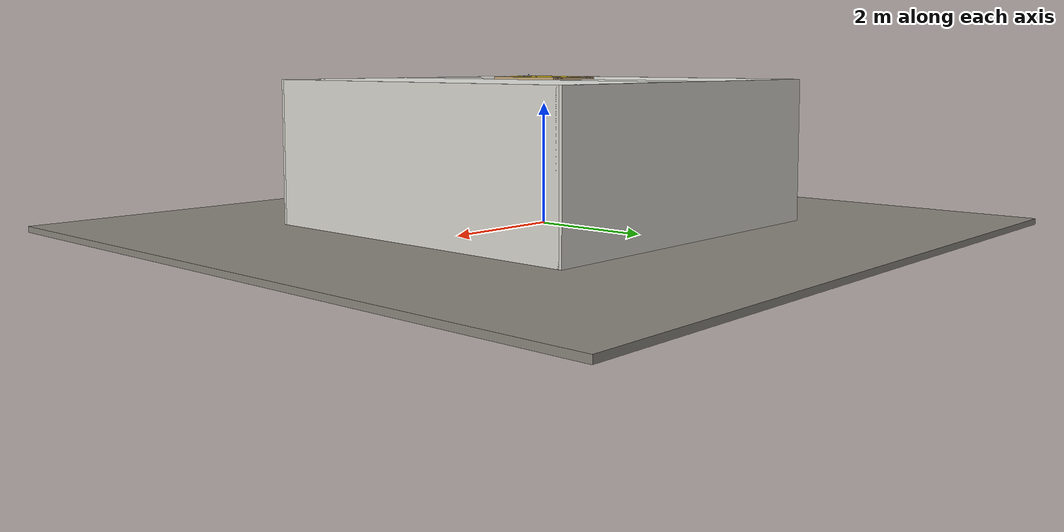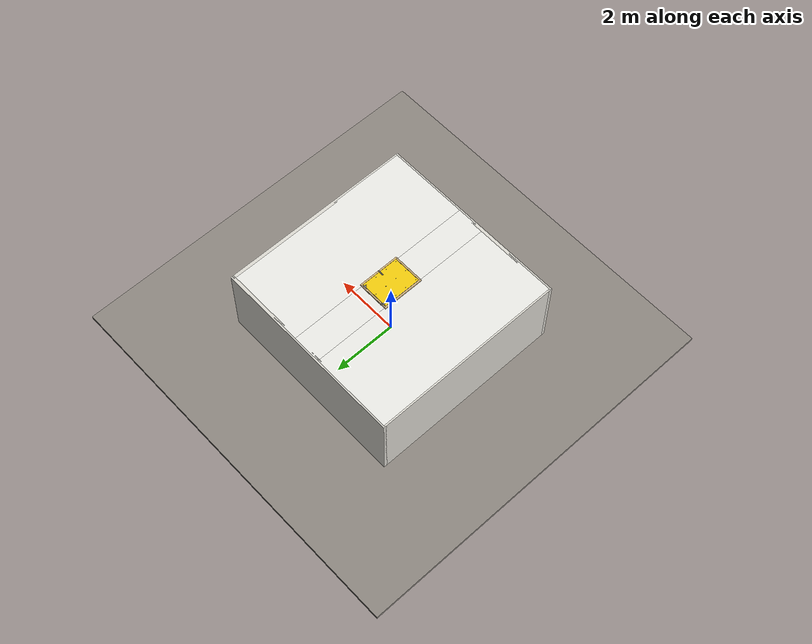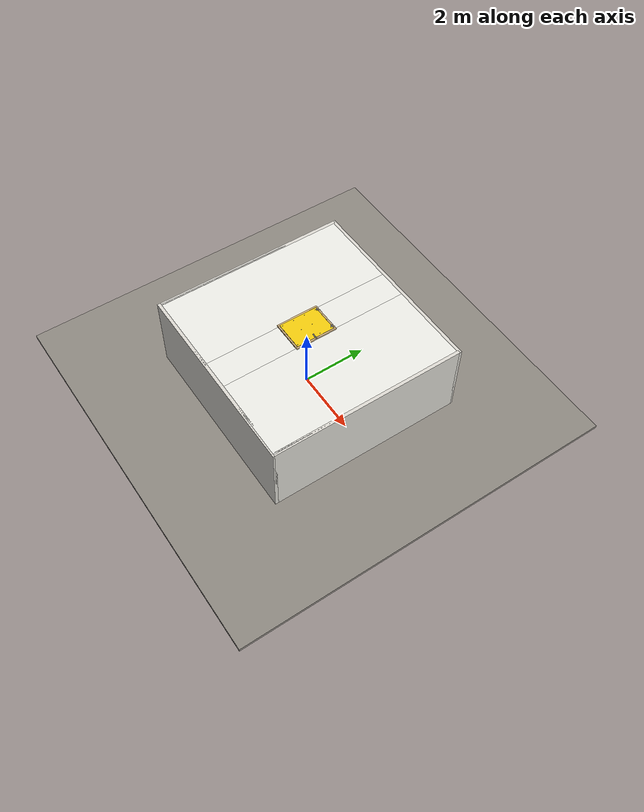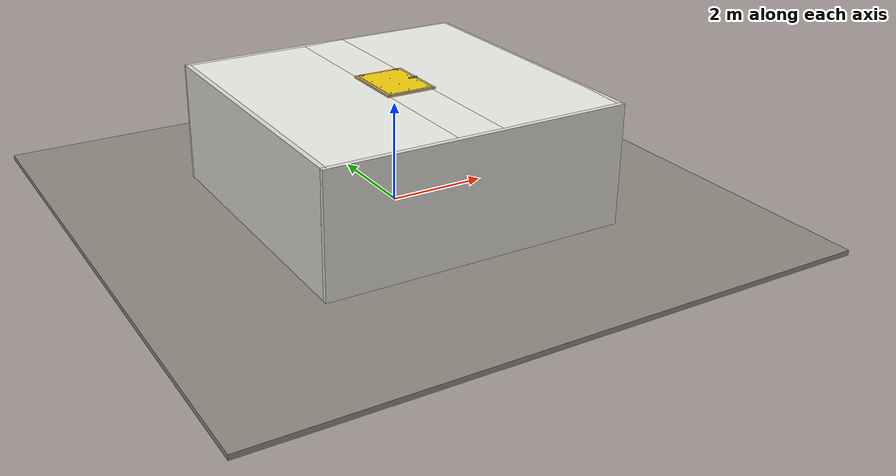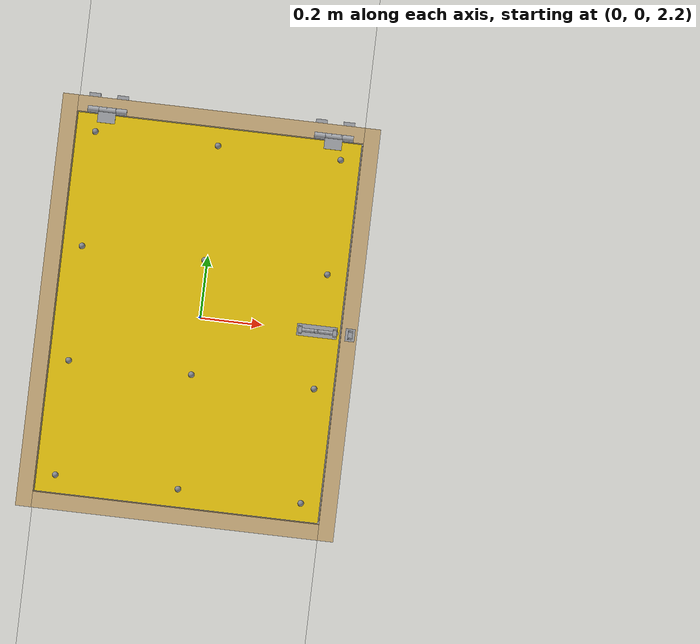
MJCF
<?xml version="1.0" ?>
<mujoco model="db0598_hatch_ceiling_full">
  <compiler angle="radian" meshdir="../../hardware" texturedir="../../textures" autolimits="true" inertiafromgeom="false"/>
  <option timestep="0.002" integrator="implicitfast" cone="elliptic" impratio="10" noslip_iterations="3">
    <flag multiccd="enable"/>
  </option>
  <size memory="16M"/>
  <default>
    <geom condim="4" solref="0.005 1" solimp="0.95 0.99 0.001"/>
    <joint solreflimit="0.005 1" solimplimit="0.95 0.99 0.001"/>
    <tendon solreflimit="0.005 1"/>
    <equality solref="0.002 1"/>
  </default>
  <visual>
    <headlight ambient="0.4 0.4 0.4" diffuse="0.7 0.7 0.7" specular="0.2 0.2 0.2"/>
    <quality shadowsize="4096"/>
    <map znear="0.01" zfar="60"/>
  </visual>
  <asset>
    <material name="mat_floor" rgba="0.55 0.53 0.5 1" specular="0.2" shininess="0.15" reflectance="0"/>
    <material name="mat_wall" rgba="0.78 0.76 0.7 1" specular="0.2" shininess="0.1" reflectance="0"/>
    <material name="mat_ceiling" rgba="0.92 0.92 0.9 1" specular="0.2" shininess="0.1" reflectance="0"/>
    <material name="mat_room_wall" rgba="0.86 0.85 0.82 1" specular="0.2" shininess="0.1" reflectance="0"/>
    <material name="mat_frame" rgba="0.82 0.7 0.5 1" specular="0.2" shininess="0.45" reflectance="0"/>
    <material name="mat_leaf" rgba="0.95 0.8 0.05 1" specular="0.23" shininess="0.34" reflectance="0.02"/>
    <material name="mat_hinge" rgba="0.65 0.66 0.68 1" specular="0.74" shininess="0.5" reflectance="0.36"/>
    <material name="mat_rivet" rgba="0.55 0.56 0.58 1" specular="0.8" shininess="0.55" reflectance="0.4"/>
    <material name="mat_op_steel" rgba="0.55 0.56 0.58 1" specular="0.8" shininess="0.55" reflectance="0.4"/>
    <material name="mat_bolt" rgba="0.65 0.66 0.68 1" specular="0.74" shininess="0.5" reflectance="0.36"/>
    <texture name="skybox" type="skybox" builtin="gradient" rgb1="0.6 0.7 0.85" rgb2="0.9 0.92 0.95" width="256" height="256"/>
  </asset>
  <worldbody>
    <light name="sun" pos="1.5 -2.5 4" dir="-0.3 0.5 -0.8" directional="true" diffuse="0.8 0.8 0.8" specular="0.3 0.3 0.3" castshadow="true"/>
    <light name="fill" pos="-1.5 2.5 3" dir="0.3 -0.5 -0.7" directional="true" diffuse="0.35 0.35 0.4" castshadow="false"/>
    <camera name="robot_view" pos="0 -1.875 3.53" xyaxes="1 0 0 0 0.26963 0.962964" fovy="52"/>
    <camera name="far_view" pos="0 1.875 3.53" xyaxes="-1 0 0 0 -0.26963 0.962964" fovy="52"/>
    <camera name="iso" pos="1.425 -1.575 3.83" xyaxes="0.741536 0.670913 0 -0.242917 0.268487 0.932151" fovy="46"/>
    <camera name="detail_handle" pos="0.765 -0.55 1.637" xyaxes="0.843661 0.536875 0 0.426006 -0.669439 0.608581" fovy="38"/>
    <geom name="floor" type="box" size="6 6 0.05" pos="0 0 -0.05" material="mat_floor" group="0" contype="1" conaffinity="1" friction="0.8 0.005 0.0001" density="2400"/>
    <geom name="ceil_a" type="box" size="1.2725 3 0.05" pos="-1.7275 0 2.35" material="mat_ceiling" group="0" contype="1" conaffinity="1" friction="0.6 0.005 0.0001" density="600"/>
    <geom name="ceil_b" type="box" size="1.2725 3 0.05" pos="1.7275 0 2.35" material="mat_ceiling" group="0" contype="1" conaffinity="1" friction="0.6 0.005 0.0001" density="600"/>
    <geom name="ceil_c" type="box" size="0.455 1.1975 0.05" pos="0 -1.8025 2.35" material="mat_ceiling" group="0" contype="1" conaffinity="1" friction="0.6 0.005 0.0001" density="600"/>
    <geom name="ceil_d" type="box" size="0.455 1.1975 0.05" pos="0 1.8025 2.35" material="mat_ceiling" group="0" contype="1" conaffinity="1" friction="0.6 0.005 0.0001" density="600"/>
    <geom name="room_wall_l" type="box" size="0.05 3 1.2" pos="-3 0 1.2" material="mat_room_wall" group="0" contype="1" conaffinity="1" friction="0.6 0.005 0.0001" density="800"/>
    <geom name="room_wall_r" type="box" size="0.05 3 1.2" pos="3 0 1.2" material="mat_room_wall" group="0" contype="1" conaffinity="1" friction="0.6 0.005 0.0001" density="800"/>
    <geom name="room_wall_n" type="box" size="3.05 0.05 1.2" pos="0 -3 1.2" material="mat_room_wall" group="0" contype="1" conaffinity="1" friction="0.6 0.005 0.0001" density="800"/>
    <geom name="room_wall_f" type="box" size="3.05 0.05 1.2" pos="0 3 1.2" material="mat_room_wall" group="0" contype="1" conaffinity="1" friction="0.6 0.005 0.0001" density="800"/>
    <geom name="curb_l" type="box" size="0.025 0.655 0.02" pos="-0.48 0 2.42" material="mat_frame" group="0" contype="1" conaffinity="1" friction="0.6 0.005 0.0001" density="7850"/>
    <geom name="curb_r" type="box" size="0.025 0.655 0.02" pos="0.48 0 2.42" material="mat_frame" group="0" contype="1" conaffinity="1" friction="0.6 0.005 0.0001" density="7850"/>
    <geom name="curb_n" type="box" size="0.455 0.025 0.02" pos="0 -0.63 2.42" material="mat_frame" group="0" contype="1" conaffinity="1" friction="0.6 0.005 0.0001" density="7850"/>
    <geom name="curb_f" type="box" size="0.455 0.025 0.02" pos="0 0.63 2.42" material="mat_frame" group="0" contype="1" conaffinity="1" friction="0.6 0.005 0.0001" density="7850"/>
    <geom name="hatch_hinge_0_curb_n" type="cylinder" size="0.01 0.018" pos="-0.404 0.615 2.44" quat="0.707107 0 0.707107 0" material="mat_hinge" group="1" contype="0" conaffinity="0" density="7850"/>
    <geom name="hatch_hinge_0_curb_strap_n" type="box" size="0.018 0.032 0.005" pos="-0.404 0.635 2.43" material="mat_hinge" group="1" contype="0" conaffinity="0" density="7850"/>
    <geom name="hatch_hinge_0_curb_p" type="cylinder" size="0.01 0.018" pos="-0.316 0.615 2.44" quat="0.707107 0 0.707107 0" material="mat_hinge" group="1" contype="0" conaffinity="0" density="7850"/>
    <geom name="hatch_hinge_0_curb_strap_p" type="box" size="0.018 0.032 0.005" pos="-0.316 0.635 2.43" material="mat_hinge" group="1" contype="0" conaffinity="0" density="7850"/>
    <geom name="hatch_hinge_1_curb_n" type="cylinder" size="0.01 0.018" pos="0.316 0.615 2.44" quat="0.707107 0 0.707107 0" material="mat_hinge" group="1" contype="0" conaffinity="0" density="7850"/>
    <geom name="hatch_hinge_1_curb_strap_n" type="box" size="0.018 0.032 0.005" pos="0.316 0.635 2.43" material="mat_hinge" group="1" contype="0" conaffinity="0" density="7850"/>
    <geom name="hatch_hinge_1_curb_p" type="cylinder" size="0.01 0.018" pos="0.404 0.615 2.44" quat="0.707107 0 0.707107 0" material="mat_hinge" group="1" contype="0" conaffinity="0" density="7850"/>
    <geom name="hatch_hinge_1_curb_strap_p" type="box" size="0.018 0.032 0.005" pos="0.404 0.635 2.43" material="mat_hinge" group="1" contype="0" conaffinity="0" density="7850"/>
    <geom name="hatch_bolt_keeper_leg_n" type="box" size="0.007 0.0025 0.0135" pos="0.483 -0.0115 2.4535" material="mat_bolt" group="0" contype="1" conaffinity="1" friction="0.6 0.005 0.0001" density="7800"/>
    <geom name="hatch_bolt_keeper_leg_p" type="box" size="0.007 0.0025 0.0135" pos="0.483 0.0115 2.4535" material="mat_bolt" group="0" contype="1" conaffinity="1" friction="0.6 0.005 0.0001" density="7800"/>
    <geom name="hatch_bolt_keeper_bridge" type="box" size="0.007 0.014 0.0025" pos="0.483 0 2.4645" material="mat_bolt" group="0" contype="1" conaffinity="1" friction="0.6 0.005 0.0001" density="7800"/>
    <geom name="hatch_bolt_keeper_base" type="box" size="0.015 0.02 0.001" pos="0.483 0 2.441" material="mat_bolt" group="1" contype="0" conaffinity="0" density="7800"/>
    <site name="approach_point" pos="0 -1.5 0" quat="1 0 0 0" size="0.05" rgba="0.2 0.9 0.2 0.5" group="4"/>
    <site name="goal_point" pos="0 0 2.9" quat="1 0 0 0" size="0.05" rgba="0.2 0.9 0.2 0.5" group="4"/>
    <site name="door_plane_center" pos="0 0 2.4" quat="1 0 0 0" size="0.02" rgba="0.2 0.9 0.2 0.5" group="4"/>
    <body name="hatch" pos="0 0.605 2.44">
      <inertial pos="0.000946 -0.598932 0.000071" mass="51.93846" quat="0.707069 -0.000008 -0.000086 0.707144" diaginertia="3.561861518 6.382585005 9.944049143"/>
      <joint name="hatch_hinge" type="hinge" axis="-1 0 0" pos="0 0.01 0" limited="true" range="0 1.570796" damping="0.64219" frictionloss="4.143564" armature="0.02"/>
      <geom name="hatch_slab" type="box" size="0.45 0.601 0.003" pos="0 -0.605 0" material="mat_leaf" group="0" contype="1" conaffinity="1" friction="0.6 0.005 0.0001" density="1"/>
      <geom name="hatch_hinge_0" type="cylinder" size="0.01 0.028" pos="-0.36 0.01 0" quat="0.707107 0 0.707107 0" material="mat_hinge" group="1" contype="0" conaffinity="0" density="7850"/>
      <geom name="hatch_hinge_0_strap" type="box" size="0.028 0.023 0.003" pos="-0.36 -0.007 0.005" material="mat_hinge" group="1" contype="0" conaffinity="0" density="7850"/>
      <geom name="hatch_hinge_1" type="cylinder" size="0.01 0.028" pos="0.36 0.01 0" quat="0.707107 0 0.707107 0" material="mat_hinge" group="1" contype="0" conaffinity="0" density="7850"/>
      <geom name="hatch_hinge_1_strap" type="box" size="0.028 0.023 0.003" pos="0.36 -0.007 0.005" material="mat_hinge" group="1" contype="0" conaffinity="0" density="7850"/>
      <geom name="rivet_0_0" type="sphere" size="0.01" pos="-0.39 -0.06 0.003" material="mat_rivet" group="2" contype="0" conaffinity="0" density="7850"/>
      <geom name="rivet_0_1" type="sphere" size="0.01" pos="0 -0.06 0.003" material="mat_rivet" group="2" contype="0" conaffinity="0" density="7850"/>
      <geom name="rivet_0_2" type="sphere" size="0.01" pos="0.39 -0.06 0.003" material="mat_rivet" group="2" contype="0" conaffinity="0" density="7850"/>
      <geom name="rivet_1_0" type="sphere" size="0.01" pos="-0.39 -0.423333 0.003" material="mat_rivet" group="2" contype="0" conaffinity="0" density="7850"/>
      <geom name="rivet_1_1" type="sphere" size="0.01" pos="0 -0.423333 0.003" material="mat_rivet" group="2" contype="0" conaffinity="0" density="7850"/>
      <geom name="rivet_1_2" type="sphere" size="0.01" pos="0.39 -0.423333 0.003" material="mat_rivet" group="2" contype="0" conaffinity="0" density="7850"/>
      <geom name="rivet_2_0" type="sphere" size="0.01" pos="-0.39 -0.786667 0.003" material="mat_rivet" group="2" contype="0" conaffinity="0" density="7850"/>
      <geom name="rivet_2_1" type="sphere" size="0.01" pos="0 -0.786667 0.003" material="mat_rivet" group="2" contype="0" conaffinity="0" density="7850"/>
      <geom name="rivet_2_2" type="sphere" size="0.01" pos="0.39 -0.786667 0.003" material="mat_rivet" group="2" contype="0" conaffinity="0" density="7850"/>
      <geom name="rivet_3_0" type="sphere" size="0.01" pos="-0.39 -1.15 0.003" material="mat_rivet" group="2" contype="0" conaffinity="0" density="7850"/>
      <geom name="rivet_3_1" type="sphere" size="0.01" pos="0 -1.15 0.003" material="mat_rivet" group="2" contype="0" conaffinity="0" density="7850"/>
      <geom name="rivet_3_2" type="sphere" size="0.01" pos="0.39 -1.15 0.003" material="mat_rivet" group="2" contype="0" conaffinity="0" density="7850"/>
      <geom name="hatch_bolt_plate" type="box" size="0.064 0.019 0.001" pos="0.378 -0.605 0.004" material="mat_bolt" group="1" contype="0" conaffinity="0" density="7800"/>
      <geom name="hatch_bolt_guide_0_leg_n" type="box" size="0.006 0.002 0.0115" pos="0.434 -0.616 0.0145" material="mat_bolt" group="1" contype="0" conaffinity="0" density="7800"/>
      <geom name="hatch_bolt_guide_0_leg_p" type="box" size="0.006 0.002 0.0115" pos="0.434 -0.594 0.0145" material="mat_bolt" group="1" contype="0" conaffinity="0" density="7800"/>
      <geom name="hatch_bolt_guide_0_bridge" type="box" size="0.006 0.013 0.002" pos="0.434 -0.605 0.024" material="mat_bolt" group="1" contype="0" conaffinity="0" density="7800"/>
      <geom name="hatch_bolt_guide_1_leg_n" type="box" size="0.006 0.002 0.0115" pos="0.324 -0.616 0.0145" material="mat_bolt" group="1" contype="0" conaffinity="0" density="7800"/>
      <geom name="hatch_bolt_guide_1_leg_p" type="box" size="0.006 0.002 0.0115" pos="0.324 -0.594 0.0145" material="mat_bolt" group="1" contype="0" conaffinity="0" density="7800"/>
      <geom name="hatch_bolt_guide_1_bridge" type="box" size="0.006 0.013 0.002" pos="0.324 -0.605 0.024" material="mat_bolt" group="1" contype="0" conaffinity="0" density="7800"/>
      <body name="hatch_bolt" pos="0.45 -0.605 0.013">
        <inertial pos="-0.066255 0 0.004246" mass="0.12954" quat="0.706926 0.706926 0.016003 -0.016003" diaginertia="0.000013355 0.000119753 0.0001309"/>
        <joint name="hatch_bolt_slide" type="slide" axis="-1 0 0" limited="true" range="0 0.04" damping="1" frictionloss="1" armature="0.1" ref="0.04"/>
        <geom name="hatch_bolt_rod" type="capsule" size="0.006 0.054" pos="-0.064 0 0" quat="0.707107 0 0.707107 0" material="mat_bolt" group="0" contype="1" conaffinity="1" friction="0.6 0.005 0.0001" density="7850"/>
        <geom name="hatch_bolt_knob" type="capsule" size="0.005 0.01" pos="-0.075 0 0.015" material="mat_bolt" group="0" contype="1" conaffinity="1" friction="0.6 0.005 0.0001" density="7850"/>
        <geom name="hatch_bolt_knob_end" type="sphere" size="0.00675" pos="-0.075 0 0.03" material="mat_bolt" group="1" contype="0" conaffinity="0" density="7850"/>
        <site name="hatch_bolt_grip" pos="-0.075 0 0.034" quat="1 0 0 0" size="0.012" rgba="0.2 0.9 0.2 0.5" group="4"/>
      </body>
    </body>
  </worldbody>
  <sensor>
    <jointpos name="hatch_hinge_pos" joint="hatch_hinge"/>
    <jointvel name="hatch_hinge_vel" joint="hatch_hinge"/>
    <jointpos name="hatch_bolt_slide_pos" joint="hatch_bolt_slide"/>
    <jointvel name="hatch_bolt_slide_vel" joint="hatch_bolt_slide"/>
  </sensor>
</mujoco>
